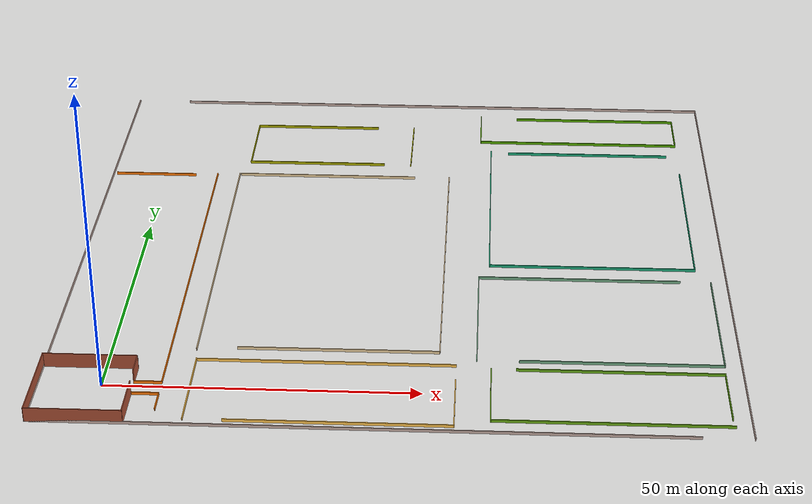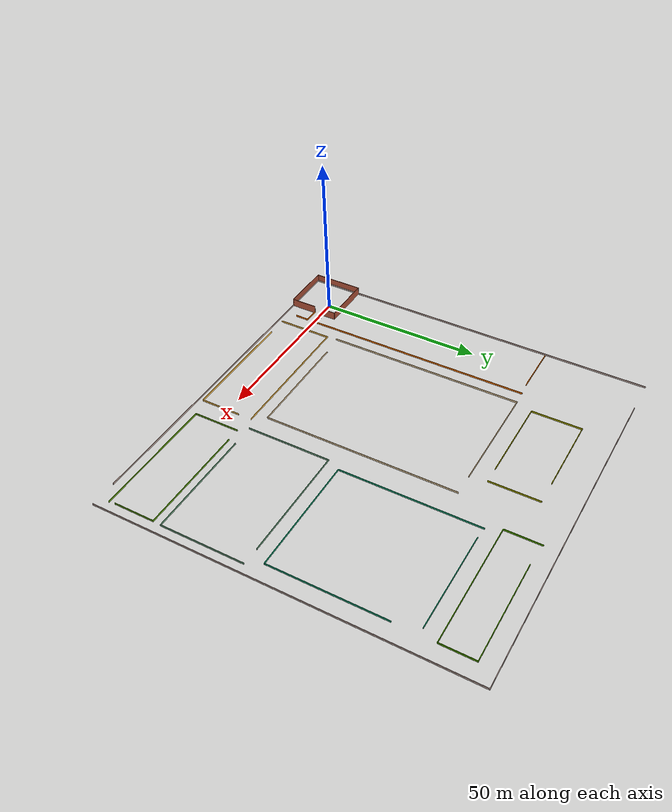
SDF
<?xml version='1.0'?>
<sdf version='1.7'>
  <model name='farm'>
    <pose>45.0065 44.9999 0 0 -0 0</pose>
    <link name='Wall_12'>
      <collision name='Wall_12_Collision'>
        <geometry>
          <box>
            <size>100.15 0.15 0.5</size>
          </box>
        </geometry>
        <pose>0 0 0.25 0 -0 0</pose>
      </collision>
      <visual name='Wall_12_Visual'>
        <pose>0 0 0.25 0 -0 0</pose>
        <geometry>
          <box>
            <size>100.15 0.15 0.5</size>
          </box>
        </geometry>
        <material>
          <script>
            <uri>file://media/materials/scripts/gazebo.material</uri>
            <name>Gazebo/Grey</name>
          </script>
          <ambient>0.760784 0.662745 0.627451 1</ambient>
        </material>
        <meta>
          <layer>0</layer>
        </meta>
      </visual>
      <pose>4.99351 55.0001 0 0 -0 0</pose>
    </link>
    <link name='Wall_13'>
      <collision name='Wall_13_Collision'>
        <geometry>
          <box>
            <size>110.15 0.15 0.5</size>
          </box>
        </geometry>
        <pose>0 0 0.25 0 -0 0</pose>
      </collision>
      <visual name='Wall_13_Visual'>
        <pose>0 0 0.25 0 -0 0</pose>
        <geometry>
          <box>
            <size>110.15 0.15 0.5</size>
          </box>
        </geometry>
        <material>
          <script>
            <uri>file://media/materials/scripts/gazebo.material</uri>
            <name>Gazebo/Grey</name>
          </script>
          <ambient>0.760784 0.662745 0.627451 1</ambient>
        </material>
        <meta>
          <layer>0</layer>
        </meta>
      </visual>
      <pose>55 5e-05 0 0 -0 -1.57068</pose>
    </link>
    <link name='Wall_15'>
      <collision name='Wall_15_Collision'>
        <geometry>
          <box>
            <size>110.15 0.15 0.5</size>
          </box>
        </geometry>
        <pose>0 0 0.25 0 -0 0</pose>
      </collision>
      <visual name='Wall_15_Visual'>
        <pose>0 0 0.25 0 -0 0</pose>
        <geometry>
          <box>
            <size>110.15 0.15 0.5</size>
          </box>
        </geometry>
        <material>
          <script>
            <uri>file://media/materials/scripts/gazebo.material</uri>
            <name>Gazebo/Grey</name>
          </script>
          <ambient>0.760784 0.662745 0.627451 1</ambient>
        </material>
        <meta>
          <layer>0</layer>
        </meta>
      </visual>
      <pose>-54.9825 5e-05 0 0 -0 1.57123</pose>
    </link>
    <link name='Wall_17'>
      <collision name='Wall_17_Collision'>
        <geometry>
          <box>
            <size>102.202 0.15 0.5</size>
          </box>
        </geometry>
        <pose>0 0 0.25 0 -0 0</pose>
      </collision>
      <visual name='Wall_17_Visual'>
        <pose>0 0 0.25 0 -0 0</pose>
        <geometry>
          <box>
            <size>102.202 0.15 0.5</size>
          </box>
        </geometry>
        <material>
          <script>
            <uri>file://media/materials/scripts/gazebo.material</uri>
            <name>Gazebo/Grey</name>
          </script>
          <ambient>0.760784 0.662745 0.627451 1</ambient>
        </material>
        <meta>
          <layer>0</layer>
        </meta>
      </visual>
      <pose>-3.93249 -54.9999 0 0 -0 0</pose>
    </link>
    <link name='Wall_20'>
      <collision name='Wall_20_Collision'>
        <geometry>
          <box>
            <size>15.1281 0.15 2.5</size>
          </box>
        </geometry>
        <pose>0 0 1.25 0 -0 0</pose>
      </collision>
      <visual name='Wall_20_Visual'>
        <pose>0 0 1.25 0 -0 0</pose>
        <geometry>
          <box>
            <size>15.1281 0.15 2.5</size>
          </box>
        </geometry>
        <material>
          <script>
            <uri>file://media/materials/scripts/gazebo.material</uri>
            <name>Gazebo/Bricks</name>
          </script>
          <ambient>1 1 1 1</ambient>
        </material>
        <meta>
          <layer>0</layer>
        </meta>
      </visual>
      <pose>-47.4955 -39.9999 0 0 -0 0</pose>
    </link>
    <link name='Wall_21'>
      <collision name='Wall_21_Collision'>
        <geometry>
          <box>
            <size>4.198 0.15 2.5</size>
          </box>
        </geometry>
        <pose>0 0 1.25 0 -0 0</pose>
      </collision>
      <visual name='Wall_21_Visual'>
        <pose>0 0 1.25 0 -0 0</pose>
        <geometry>
          <box>
            <size>4.198 0.15 2.5</size>
          </box>
        </geometry>
        <material>
          <script>
            <uri>file://media/materials/scripts/gazebo.material</uri>
            <name>Gazebo/Bricks</name>
          </script>
          <ambient>1 1 1 1</ambient>
        </material>
        <meta>
          <layer>0</layer>
        </meta>
      </visual>
      <pose>-40.0065 -42.0239 0 0 -0 -1.5708</pose>
    </link>
    <link name='Wall_23'>
      <collision name='Wall_23_Collision'>
        <geometry>
          <box>
            <size>15.15 0.15 2.5</size>
          </box>
        </geometry>
        <pose>0 0 1.25 0 -0 0</pose>
      </collision>
      <visual name='Wall_23_Visual'>
        <pose>0 0 1.25 0 -0 0</pose>
        <geometry>
          <box>
            <size>15.15 0.15 2.5</size>
          </box>
        </geometry>
        <material>
          <script>
            <uri>file://media/materials/scripts/gazebo.material</uri>
            <name>Gazebo/Bricks</name>
          </script>
          <ambient>1 1 1 1</ambient>
        </material>
        <meta>
          <layer>0</layer>
        </meta>
      </visual>
      <pose>-54.9715 -47.4999 0 0 -0 -1.56906</pose>
    </link>
    <link name='Wall_24'>
      <collision name='Wall_24_Collision'>
        <geometry>
          <box>
            <size>15.102 0.15 2.5</size>
          </box>
        </geometry>
        <pose>0 0 1.25 0 -0 0</pose>
      </collision>
      <visual name='Wall_24_Visual'>
        <pose>0 0 1.25 0 -0 0</pose>
        <geometry>
          <box>
            <size>15.102 0.15 2.5</size>
          </box>
        </geometry>
        <material>
          <script>
            <uri>file://media/materials/scripts/gazebo.material</uri>
            <name>Gazebo/Bricks</name>
          </script>
          <ambient>1 1 1 1</ambient>
        </material>
        <meta>
          <layer>0</layer>
        </meta>
      </visual>
      <pose>-47.4825 -54.9999 0 0 -0 0</pose>
    </link>
    <link name='Wall_256'>
      <collision name='Wall_256_Collision'>
        <geometry>
          <box>
            <size>32.25 0.15 0.5</size>
          </box>
        </geometry>
        <pose>0 0 0.25 0 -0 0</pose>
      </collision>
      <visual name='Wall_256_Visual'>
        <pose>0 0 0.25 0 -0 0</pose>
        <geometry>
          <box>
            <size>32.25 0.15 0.5</size>
          </box>
        </geometry>
        <material>
          <script>
            <uri>file://media/materials/scripts/gazebo.material</uri>
            <name>Gazebo/Grey</name>
          </script>
          <ambient>0.921569 0.807843 0.615686 1</ambient>
        </material>
        <meta>
          <layer>0</layer>
        </meta>
      </visual>
      <pose>-15.1815 25.0001 0 0 -0 0</pose>
    </link>
    <link name='Wall_258'>
      <collision name='Wall_258_Collision'>
        <geometry>
          <box>
            <size>34.5 0.15 0.5</size>
          </box>
        </geometry>
        <pose>0 0 0.25 0 -0 0</pose>
      </collision>
      <visual name='Wall_258_Visual'>
        <pose>0 0 0.25 0 -0 0</pose>
        <geometry>
          <box>
            <size>34.5 0.15 0.5</size>
          </box>
        </geometry>
        <material>
          <script>
            <uri>file://media/materials/scripts/gazebo.material</uri>
            <name>Gazebo/Grey</name>
          </script>
          <ambient>0.113725 0.666667 0.482353 1</ambient>
        </material>
        <meta>
          <layer>0</layer>
        </meta>
      </visual>
      <pose>49.9935 11.092 0 0 -0 1.5708</pose>
    </link>
    <link name='Wall_264'>
      <collision name='Wall_264_Collision'>
        <geometry>
          <box>
            <size>25.15 0.15 0.5</size>
          </box>
        </geometry>
        <pose>0 0 0.25 0 -0 0</pose>
      </collision>
      <visual name='Wall_264_Visual'>
        <pose>0 0 0.25 0 -0 0</pose>
        <geometry>
          <box>
            <size>25.15 0.15 0.5</size>
          </box>
        </geometry>
        <material>
          <script>
            <uri>file://media/materials/scripts/gazebo.material</uri>
            <name>Gazebo/Grey</name>
          </script>
          <ambient>0.666667 0.666667 0 1</ambient>
        </material>
        <meta>
          <layer>0</layer>
        </meta>
      </visual>
      <pose>-17.5065 30.0001 0 0 -0 0</pose>
    </link>
    <link name='Wall_28'>
      <collision name='Wall_28_Collision'>
        <geometry>
          <box>
            <size>8 0.15 2.5</size>
          </box>
        </geometry>
        <pose>0 0 1.25 0 -0 0</pose>
      </collision>
      <visual name='Wall_28_Visual'>
        <pose>0 0 1.25 0 -0 0</pose>
        <geometry>
          <box>
            <size>8 0.15 2.5</size>
          </box>
        </geometry>
        <material>
          <script>
            <uri>file://media/materials/scripts/gazebo.material</uri>
            <name>Gazebo/Bricks</name>
          </script>
          <ambient>1 1 1 1</ambient>
        </material>
        <meta>
          <layer>0</layer>
        </meta>
      </visual>
      <pose>-40.0065 -51.048 0 0 -0 -1.5708</pose>
    </link>
    <link name='Wall_30'>
      <collision name='Wall_30_Collision'>
        <geometry>
          <box>
            <size>4.5 0.15 0.5</size>
          </box>
        </geometry>
        <pose>0 0 0.25 0 -0 0</pose>
      </collision>
      <visual name='Wall_30_Visual'>
        <pose>0 0 0.25 0 -0 0</pose>
        <geometry>
          <box>
            <size>4.5 0.15 0.5</size>
          </box>
        </geometry>
        <material>
          <script>
            <uri>file://media/materials/scripts/gazebo.material</uri>
            <name>Gazebo/Grey</name>
          </script>
          <ambient>0.996078 0.47451 0.0196078 1</ambient>
        </material>
        <meta>
          <layer>0</layer>
        </meta>
      </visual>
      <pose>-37.8315 -44.048 0 0 -0 0</pose>
    </link>
    <link name='Wall_33'>
      <collision name='Wall_33_Collision'>
        <geometry>
          <box>
            <size>69 0.15 0.5</size>
          </box>
        </geometry>
        <pose>0 0 0.25 0 -0 0</pose>
      </collision>
      <visual name='Wall_33_Visual'>
        <pose>0 0 0.25 0 -0 0</pose>
        <geometry>
          <box>
            <size>69 0.15 0.5</size>
          </box>
        </geometry>
        <material>
          <script>
            <uri>file://media/materials/scripts/gazebo.material</uri>
            <name>Gazebo/Grey</name>
          </script>
          <ambient>0.996078 0.47451 0.0196078 1</ambient>
        </material>
        <meta>
          <layer>0</layer>
        </meta>
      </visual>
      <pose>-35.6565 -9.62295 0 0 -0 1.5708</pose>
    </link>
    <link name='Wall_35'>
      <collision name='Wall_35_Collision'>
        <geometry>
          <box>
            <size>14.75 0.15 0.5</size>
          </box>
        </geometry>
        <pose>0 0 0.25 0 -0 0</pose>
      </collision>
      <visual name='Wall_35_Visual'>
        <pose>0 0 0.25 0 -0 0</pose>
        <geometry>
          <box>
            <size>14.75 0.15 0.5</size>
          </box>
        </geometry>
        <material>
          <script>
            <uri>file://media/materials/scripts/gazebo.material</uri>
            <name>Gazebo/Grey</name>
          </script>
          <ambient>0.996078 0.47451 0.0196078 1</ambient>
        </material>
        <meta>
          <layer>0</layer>
        </meta>
      </visual>
      <pose>-47.0535 24.445 0 0 -0 0</pose>
    </link>
    <link name='Wall_38'>
      <collision name='Wall_38_Collision'>
        <geometry>
          <box>
            <size>4.5 0.15 0.5</size>
          </box>
        </geometry>
        <pose>0 0 0.25 0 -0 0</pose>
      </collision>
      <visual name='Wall_38_Visual'>
        <pose>0 0 0.25 0 -0 0</pose>
        <geometry>
          <box>
            <size>4.5 0.15 0.5</size>
          </box>
        </geometry>
        <material>
          <script>
            <uri>file://media/materials/scripts/gazebo.material</uri>
            <name>Gazebo/Grey</name>
          </script>
          <ambient>0.996078 0.47451 0.0196078 1</ambient>
        </material>
        <meta>
          <layer>0</layer>
        </meta>
      </visual>
      <pose>-37.8315 -47.123 0 0 -0 0</pose>
    </link>
    <link name='Wall_39'>
      <collision name='Wall_39_Collision'>
        <geometry>
          <box>
            <size>4.25 0.15 0.5</size>
          </box>
        </geometry>
        <pose>0 0 0.25 0 -0 0</pose>
      </collision>
      <visual name='Wall_39_Visual'>
        <pose>0 0 0.25 0 -0 0</pose>
        <geometry>
          <box>
            <size>4.25 0.15 0.5</size>
          </box>
        </geometry>
        <material>
          <script>
            <uri>file://media/materials/scripts/gazebo.material</uri>
            <name>Gazebo/Grey</name>
          </script>
          <ambient>0.996078 0.47451 0.0196078 1</ambient>
        </material>
        <meta>
          <layer>0</layer>
        </meta>
      </visual>
      <pose>-35.6565 -49.173 0 0 -0 -1.5708</pose>
    </link>
    <link name='Wall_41'>
      <collision name='Wall_41_Collision'>
        <geometry>
          <box>
            <size>35.15 0.15 0.5</size>
          </box>
        </geometry>
        <pose>0 0 0.25 0 -0 0</pose>
      </collision>
      <visual name='Wall_41_Visual'>
        <pose>0 0 0.25 0 -0 0</pose>
        <geometry>
          <box>
            <size>35.15 0.15 0.5</size>
          </box>
        </geometry>
        <material>
          <script>
            <uri>file://media/materials/scripts/gazebo.material</uri>
            <name>Gazebo/Grey</name>
          </script>
          <ambient>1 0.764706 0.305882 1</ambient>
        </material>
        <meta>
          <layer>0</layer>
        </meta>
      </visual>
      <pose>-7.50649 -53.6649 0 0 -0 0</pose>
    </link>
    <link name='Wall_43'>
      <collision name='Wall_43_Collision'>
        <geometry>
          <box>
            <size>41.285 0.15 0.5</size>
          </box>
        </geometry>
        <pose>0 0 0.25 0 -0 0</pose>
      </collision>
      <visual name='Wall_43_Visual'>
        <pose>0 0 0.25 0 -0 0</pose>
        <geometry>
          <box>
            <size>41.285 0.15 0.5</size>
          </box>
        </geometry>
        <material>
          <script>
            <uri>file://media/materials/scripts/gazebo.material</uri>
            <name>Gazebo/Grey</name>
          </script>
          <ambient>1 0.764706 0.305882 1</ambient>
        </material>
        <meta>
          <layer>0</layer>
        </meta>
      </visual>
      <pose>-10.574 -37.315 0 0 -0 3.14159</pose>
    </link>
    <link name='Wall_44'>
      <collision name='Wall_44_Collision'>
        <geometry>
          <box>
            <size>16.5 0.15 0.5</size>
          </box>
        </geometry>
        <pose>0 0 0.25 0 -0 0</pose>
      </collision>
      <visual name='Wall_44_Visual'>
        <pose>0 0 0.25 0 -0 0</pose>
        <geometry>
          <box>
            <size>16.5 0.15 0.5</size>
          </box>
        </geometry>
        <material>
          <script>
            <uri>file://media/materials/scripts/gazebo.material</uri>
            <name>Gazebo/Grey</name>
          </script>
          <ambient>1 0.764706 0.305882 1</ambient>
        </material>
        <meta>
          <layer>0</layer>
        </meta>
      </visual>
      <pose>-31.1415 -45.49 0 0 -0 -1.5708</pose>
    </link>
    <link name='Wall_48'>
      <collision name='Wall_48_Collision'>
        <geometry>
          <box>
            <size>37.077 0.15 0.5</size>
          </box>
        </geometry>
        <pose>0 0 0.25 0 -0 0</pose>
      </collision>
      <visual name='Wall_48_Visual'>
        <pose>0 0 0.25 0 -0 0</pose>
        <geometry>
          <box>
            <size>37.077 0.15 0.5</size>
          </box>
        </geometry>
        <material>
          <script>
            <uri>file://media/materials/scripts/gazebo.material</uri>
            <name>Gazebo/Grey</name>
          </script>
          <ambient>0.415686 0.666667 0.0862745 1</ambient>
        </material>
        <meta>
          <layer>0</layer>
        </meta>
      </visual>
      <pose>33.964 -51.9999 0 0 -0 3.14159</pose>
    </link>
    <link name='Wall_49'>
      <collision name='Wall_49_Collision'>
        <geometry>
          <box>
            <size>14.028 0.15 0.5</size>
          </box>
        </geometry>
        <pose>0 0 0.25 0 -0 0</pose>
      </collision>
      <visual name='Wall_49_Visual'>
        <pose>0 0 0.25 0 -0 0</pose>
        <geometry>
          <box>
            <size>14.028 0.15 0.5</size>
          </box>
        </geometry>
        <material>
          <script>
            <uri>file://media/materials/scripts/gazebo.material</uri>
            <name>Gazebo/Grey</name>
          </script>
          <ambient>0.4 0.666667 0.0941176 1</ambient>
        </material>
        <meta>
          <layer>0</layer>
        </meta>
      </visual>
      <pose>15.5005 -45.0609 0 0 -0 1.5708</pose>
    </link>
    <link name='Wall_52'>
      <collision name='Wall_52_Collision'>
        <geometry>
          <box>
            <size>32.484 0.15 0.5</size>
          </box>
        </geometry>
        <pose>0 0 0.25 0 -0 0</pose>
      </collision>
      <visual name='Wall_52_Visual'>
        <pose>0 0 0.25 0 -0 0</pose>
        <geometry>
          <box>
            <size>32.484 0.15 0.5</size>
          </box>
        </geometry>
        <material>
          <script>
            <uri>file://media/materials/scripts/gazebo.material</uri>
            <name>Gazebo/Grey</name>
          </script>
          <ambient>0.443137 0.666667 0.517647 1</ambient>
        </material>
        <meta>
          <layer>0</layer>
        </meta>
      </visual>
      <pose>36.1605 -35.612 0 0 -0 0</pose>
    </link>
    <link name='Wall_53'>
      <collision name='Wall_53_Collision'>
        <geometry>
          <box>
            <size>25.25 0.15 0.5</size>
          </box>
        </geometry>
        <pose>0 0 0.25 0 -0 0</pose>
      </collision>
      <visual name='Wall_53_Visual'>
        <pose>0 0 0.25 0 -0 0</pose>
        <geometry>
          <box>
            <size>25.25 0.15 0.5</size>
          </box>
        </geometry>
        <material>
          <script>
            <uri>file://media/materials/scripts/gazebo.material</uri>
            <name>Gazebo/Grey</name>
          </script>
          <ambient>0.443137 0.666667 0.517647 1</ambient>
        </material>
        <meta>
          <layer>0</layer>
        </meta>
      </visual>
      <pose>52.3275 -23.062 0 0 -0 1.5708</pose>
    </link>
    <link name='Wall_55'>
      <collision name='Wall_55_Collision'>
        <geometry>
          <box>
            <size>25.25 0.15 0.5</size>
          </box>
        </geometry>
        <pose>0 0 0.25 0 -0 0</pose>
      </collision>
      <visual name='Wall_55_Visual'>
        <pose>0 0 0.25 0 -0 0</pose>
        <geometry>
          <box>
            <size>25.25 0.15 0.5</size>
          </box>
        </geometry>
        <material>
          <script>
            <uri>file://media/materials/scripts/gazebo.material</uri>
            <name>Gazebo/Grey</name>
          </script>
          <ambient>0.443137 0.666667 0.517647 1</ambient>
        </material>
        <meta>
          <layer>0</layer>
        </meta>
      </visual>
      <pose>13.2275 -23.062 0 0 -0 -1.5708</pose>
    </link>
    <link name='Wall_57'>
      <collision name='Wall_57_Collision'>
        <geometry>
          <box>
            <size>59.459 0.15 0.5</size>
          </box>
        </geometry>
        <pose>0 0 0.25 0 -0 0</pose>
      </collision>
      <visual name='Wall_57_Visual'>
        <pose>0 0 0.25 0 -0 0</pose>
        <geometry>
          <box>
            <size>59.459 0.15 0.5</size>
          </box>
        </geometry>
        <material>
          <script>
            <uri>file://media/materials/scripts/gazebo.material</uri>
            <name>Gazebo/Grey</name>
          </script>
          <ambient>0.921569 0.807843 0.615686 1</ambient>
        </material>
        <meta>
          <layer>0</layer>
        </meta>
      </visual>
      <pose>-31.5275 -4.65445 0 0 -0 1.5708</pose>
    </link>
    <link name='Wall_59'>
      <collision name='Wall_59_Collision'>
        <geometry>
          <box>
            <size>58.7698 0.15 0.5</size>
          </box>
        </geometry>
        <pose>0 0 0.25 0 -0 0</pose>
      </collision>
      <visual name='Wall_59_Visual'>
        <pose>0 0 0.25 0 -0 0</pose>
        <geometry>
          <box>
            <size>58.7698 0.15 0.5</size>
          </box>
        </geometry>
        <material>
          <script>
            <uri>file://media/materials/scripts/gazebo.material</uri>
            <name>Gazebo/Grey</name>
          </script>
          <ambient>0.921569 0.807843 0.615686 1</ambient>
        </material>
        <meta>
          <layer>0</layer>
        </meta>
      </visual>
      <pose>7.29951 -4.30945 0 0 -0 -1.5708</pose>
    </link>
    <link name='Wall_60'>
      <collision name='Wall_60_Collision'>
        <geometry>
          <box>
            <size>32.4561 0.15 0.5</size>
          </box>
        </geometry>
        <pose>0 0 0.25 0 -0 0</pose>
      </collision>
      <visual name='Wall_60_Visual'>
        <pose>0 0 0.25 0 -0 0</pose>
        <geometry>
          <box>
            <size>32.4561 0.15 0.5</size>
          </box>
        </geometry>
        <material>
          <script>
            <uri>file://media/materials/scripts/gazebo.material</uri>
            <name>Gazebo/Grey</name>
          </script>
          <ambient>0.921569 0.807843 0.615686 1</ambient>
        </material>
        <meta>
          <layer>0</layer>
        </meta>
      </visual>
      <pose>-8.85349 -33.651 0 0 -0 -3.13961</pose>
    </link>
    <link name='Wall_62'>
      <collision name='Wall_62_Collision'>
        <geometry>
          <box>
            <size>42.25 0.15 0.5</size>
          </box>
        </geometry>
        <pose>0 0 0.25 0 -0 0</pose>
      </collision>
      <visual name='Wall_62_Visual'>
        <pose>0 0 0.25 0 -0 0</pose>
        <geometry>
          <box>
            <size>42.25 0.15 0.5</size>
          </box>
        </geometry>
        <material>
          <script>
            <uri>file://media/materials/scripts/gazebo.material</uri>
            <name>Gazebo/Grey</name>
          </script>
          <ambient>0.113725 0.666667 0.482353 1</ambient>
        </material>
        <meta>
          <layer>0</layer>
        </meta>
      </visual>
      <pose>14.9935 14.818 0 0 -0 -1.5708</pose>
    </link>
    <link name='Wall_63'>
      <collision name='Wall_63_Collision'>
        <geometry>
          <box>
            <size>35.15 0.15 0.5</size>
          </box>
        </geometry>
        <pose>0 0 0.25 0 -0 0</pose>
      </collision>
      <visual name='Wall_63_Visual'>
        <pose>0 0 0.25 0 -0 0</pose>
        <geometry>
          <box>
            <size>35.15 0.15 0.5</size>
          </box>
        </geometry>
        <material>
          <script>
            <uri>file://media/materials/scripts/gazebo.material</uri>
            <name>Gazebo/Grey</name>
          </script>
          <ambient>0.113725 0.666667 0.482353 1</ambient>
        </material>
        <meta>
          <layer>0</layer>
        </meta>
      </visual>
      <pose>32.4935 -6.23195 0 0 -0 0</pose>
    </link>
    <link name='Wall_65'>
      <collision name='Wall_65_Collision'>
        <geometry>
          <box>
            <size>29.75 0.15 0.5</size>
          </box>
        </geometry>
        <pose>0 0 0.25 0 -0 0</pose>
      </collision>
      <visual name='Wall_65_Visual'>
        <pose>0 0 0.25 0 -0 0</pose>
        <geometry>
          <box>
            <size>29.75 0.15 0.5</size>
          </box>
        </geometry>
        <material>
          <script>
            <uri>file://media/materials/scripts/gazebo.material</uri>
            <name>Gazebo/Grey</name>
          </script>
          <ambient>0.113725 0.666667 0.482353 1</ambient>
        </material>
        <meta>
          <layer>0</layer>
        </meta>
      </visual>
      <pose>33.1295 35.488 0 0 -0 3.14159</pose>
    </link>
    <link name='Wall_67'>
      <collision name='Wall_67_Collision'>
        <geometry>
          <box>
            <size>23.15 0.15 0.5</size>
          </box>
        </geometry>
        <pose>0 0 0.25 0 -0 0</pose>
      </collision>
      <visual name='Wall_67_Visual'>
        <pose>0 0 0.25 0 -0 0</pose>
        <geometry>
          <box>
            <size>23.15 0.15 0.5</size>
          </box>
        </geometry>
        <material>
          <script>
            <uri>file://media/materials/scripts/gazebo.material</uri>
            <name>Gazebo/Grey</name>
          </script>
          <ambient>0.666667 0.666667 0 1</ambient>
        </material>
        <meta>
          <layer>0</layer>
        </meta>
      </visual>
      <pose>-18.5065 45.0001 0 0 -0 3.14159</pose>
    </link>
    <link name='Wall_68'>
      <collision name='Wall_68_Collision'>
        <geometry>
          <box>
            <size>15.15 0.15 0.5</size>
          </box>
        </geometry>
        <pose>0 0 0.25 0 -0 0</pose>
      </collision>
      <visual name='Wall_68_Visual'>
        <pose>0 0 0.25 0 -0 0</pose>
        <geometry>
          <box>
            <size>15.15 0.15 0.5</size>
          </box>
        </geometry>
        <material>
          <script>
            <uri>file://media/materials/scripts/gazebo.material</uri>
            <name>Gazebo/Grey</name>
          </script>
          <ambient>0.666667 0.666667 0 1</ambient>
        </material>
        <meta>
          <layer>0</layer>
        </meta>
      </visual>
      <pose>-30.0065 37.5001 0 0 -0 -1.5708</pose>
    </link>
    <link name='Wall_71'>
      <collision name='Wall_71_Collision'>
        <geometry>
          <box>
            <size>15.15 0.15 0.5</size>
          </box>
        </geometry>
        <pose>0 0 0.25 0 -0 0</pose>
      </collision>
      <visual name='Wall_71_Visual'>
        <pose>0 0 0.25 0 -0 0</pose>
        <geometry>
          <box>
            <size>15.15 0.15 0.5</size>
          </box>
        </geometry>
        <material>
          <script>
            <uri>file://media/materials/scripts/gazebo.material</uri>
            <name>Gazebo/Grey</name>
          </script>
          <ambient>0.666667 0.666667 0 1</ambient>
        </material>
        <meta>
          <layer>0</layer>
        </meta>
      </visual>
      <pose>-0.006492 37.5001 0 0 -0 1.5708</pose>
    </link>
    <link name='Wall_74'>
      <collision name='Wall_74_Collision'>
        <geometry>
          <box>
            <size>30.15 0.15 0.5</size>
          </box>
        </geometry>
        <pose>0 0 0.25 0 -0 0</pose>
      </collision>
      <visual name='Wall_74_Visual'>
        <pose>0 0 0.25 0 -0 0</pose>
        <geometry>
          <box>
            <size>30.15 0.15 0.5</size>
          </box>
        </geometry>
        <material>
          <script>
            <uri>file://media/materials/scripts/gazebo.material</uri>
            <name>Gazebo/Grey</name>
          </script>
          <ambient>0.333333 0.666667 0 1</ambient>
        </material>
        <meta>
          <layer>0</layer>
        </meta>
      </visual>
      <pose>34.9935 50.0001 0 0 -0 0</pose>
    </link>
    <link name='Wall_75'>
      <collision name='Wall_75_Collision'>
        <geometry>
          <box>
            <size>10.15 0.15 0.5</size>
          </box>
        </geometry>
        <pose>0 0 0.25 0 -0 0</pose>
      </collision>
      <visual name='Wall_75_Visual'>
        <pose>0 0 0.25 0 -0 0</pose>
        <geometry>
          <box>
            <size>10.15 0.15 0.5</size>
          </box>
        </geometry>
        <material>
          <script>
            <uri>file://media/materials/scripts/gazebo.material</uri>
            <name>Gazebo/Grey</name>
          </script>
          <ambient>0.333333 0.666667 0 1</ambient>
        </material>
        <meta>
          <layer>0</layer>
        </meta>
      </visual>
      <pose>49.9935 45.0001 0 0 -0 -1.5708</pose>
    </link>
    <link name='Wall_76'>
      <collision name='Wall_76_Collision'>
        <geometry>
          <box>
            <size>37.15 0.15 0.5</size>
          </box>
        </geometry>
        <pose>0 0 0.25 0 -0 0</pose>
      </collision>
      <visual name='Wall_76_Visual'>
        <pose>0 0 0.25 0 -0 0</pose>
        <geometry>
          <box>
            <size>37.15 0.15 0.5</size>
          </box>
        </geometry>
        <material>
          <script>
            <uri>file://media/materials/scripts/gazebo.material</uri>
            <name>Gazebo/Grey</name>
          </script>
          <ambient>0.333333 0.666667 0 1</ambient>
        </material>
        <meta>
          <layer>0</layer>
        </meta>
      </visual>
      <pose>31.4935 40.0001 0 0 -0 3.14159</pose>
    </link>
    <link name='Wall_77'>
      <collision name='Wall_77_Collision'>
        <geometry>
          <box>
            <size>10.795 0.15 0.5</size>
          </box>
        </geometry>
        <pose>0 0 0.25 0 -0 0</pose>
      </collision>
      <visual name='Wall_77_Visual'>
        <pose>0 0 0.25 0 -0 0</pose>
        <geometry>
          <box>
            <size>10.795 0.15 0.5</size>
          </box>
        </geometry>
        <material>
          <script>
            <uri>file://media/materials/scripts/gazebo.material</uri>
            <name>Gazebo/Grey</name>
          </script>
          <ambient>0.333333 0.666667 0 1</ambient>
        </material>
        <meta>
          <layer>0</layer>
        </meta>
      </visual>
      <pose>12.9935 45.3226 0 0 -0 1.5708</pose>
    </link>
    <link name='Wall_79'>
      <collision name='Wall_79_Collision'>
        <geometry>
          <box>
            <size>12.25 0.15 0.5</size>
          </box>
        </geometry>
        <pose>0 0 0.25 0 -0 0</pose>
      </collision>
      <visual name='Wall_79_Visual'>
        <pose>0 0 0.25 0 -0 0</pose>
        <geometry>
          <box>
            <size>12.25 0.15 0.5</size>
          </box>
        </geometry>
        <material>
          <script>
            <uri>file://media/materials/scripts/gazebo.material</uri>
            <name>Gazebo/Grey</name>
          </script>
          <ambient>1 0.764706 0.305882 1</ambient>
        </material>
        <meta>
          <layer>0</layer>
        </meta>
      </visual>
      <pose>9.99351 -47.615 0 0 -0 1.5708</pose>
    </link>
    <link name='Wall_83'>
      <collision name='Wall_83_Collision'>
        <geometry>
          <box>
            <size>32.75 0.15 0.5</size>
          </box>
        </geometry>
        <pose>0 0 0.25 0 -0 0</pose>
      </collision>
      <visual name='Wall_83_Visual'>
        <pose>0 0 0.25 0 -0 0</pose>
        <geometry>
          <box>
            <size>32.75 0.15 0.5</size>
          </box>
        </geometry>
        <material>
          <script>
            <uri>file://media/materials/scripts/gazebo.material</uri>
            <name>Gazebo/Grey</name>
          </script>
          <ambient>0.4 0.666667 0.0941176 1</ambient>
        </material>
        <meta>
          <layer>0</layer>
        </meta>
      </visual>
      <pose>35.8405 -38.0399 0 0 -0 0</pose>
    </link>
    <link name='Wall_84'>
      <collision name='Wall_84_Collision'>
        <geometry>
          <box>
            <size>12.25 0.15 0.5</size>
          </box>
        </geometry>
        <pose>0 0 0.25 0 -0 0</pose>
      </collision>
      <visual name='Wall_84_Visual'>
        <pose>0 0 0.25 0 -0 0</pose>
        <geometry>
          <box>
            <size>12.25 0.15 0.5</size>
          </box>
        </geometry>
        <material>
          <script>
            <uri>file://media/materials/scripts/gazebo.material</uri>
            <name>Gazebo/Grey</name>
          </script>
          <ambient>0.4 0.666667 0.0941176 1</ambient>
        </material>
        <meta>
          <layer>0</layer>
        </meta>
      </visual>
      <pose>52.1405 -44.09 0 0 -0 -1.5708</pose>
    </link>
    <link name='Wall_86'>
      <collision name='Wall_86_Collision'>
        <geometry>
          <box>
            <size>34 0.15 0.5</size>
          </box>
        </geometry>
        <pose>0 0 0.25 0 -0 0</pose>
      </collision>
      <visual name='Wall_86_Visual'>
        <pose>0 0 0.25 0 -0 0</pose>
        <geometry>
          <box>
            <size>34 0.15 0.5</size>
          </box>
        </geometry>
        <material>
          <script>
            <uri>file://media/materials/scripts/gazebo.material</uri>
            <name>Gazebo/Grey</name>
          </script>
          <ambient>0.443137 0.666667 0.517647 1</ambient>
        </material>
        <meta>
          <layer>0</layer>
        </meta>
      </visual>
      <pose>30.1925 -10.2739 0 0 -0 0</pose>
    </link>
    <static>1</static>
  </model>
</sdf>
